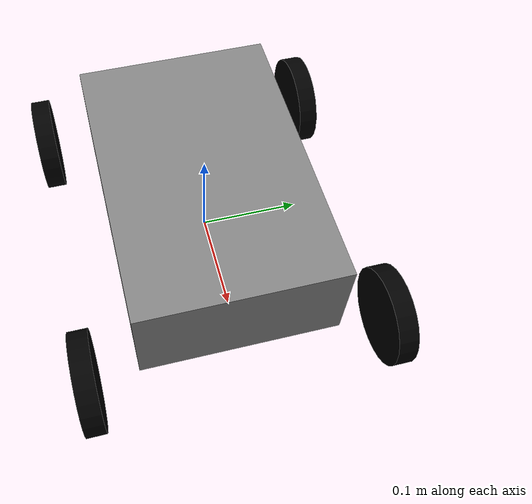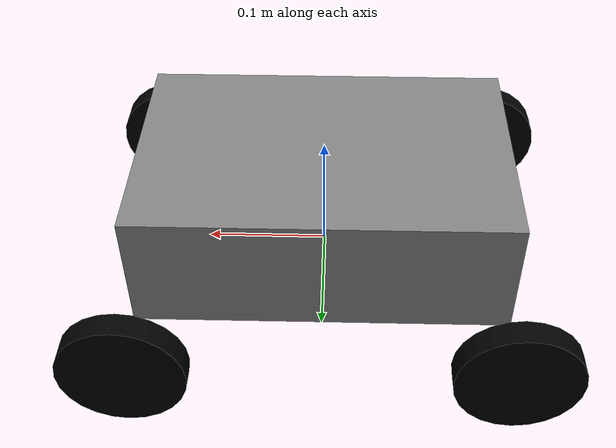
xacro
<?xml version="1.0"?>
<robot name="yahboomcar_X3" xmlns:xacro="http://www.ros.org/wiki/xacro">

  <!-- 기본 파라미터 -->
  <xacro:property name="wheel_separation" value="0.30"/>   <!-- 좌우 바퀴 간 거리 -->
  <xacro:property name="wheel_radius" value="0.05"/>       <!-- 바퀴 반지름 -->
  <xacro:property name="wheel_thickness" value="0.02"/>    <!-- 바퀴 두께 -->
  <xacro:property name="base_size_x" value="0.3"/>         <!-- 베이스 길이 -->
  <xacro:property name="base_size_y" value="0.2"/>         <!-- 베이스 폭 -->
  <xacro:property name="base_size_z" value="0.1"/>         <!-- 베이스 높이 -->

  <!-- 재질 -->
  <material name="Green"><color rgba="0 1 0 1"/></material>
  <material name="Black"><color rgba="0 0 0 1"/></material>
  <material name="Gray"><color rgba="0.5 0.5 0.5 1"/></material>

  <!-- ===== Base link ===== -->
  <link name="base_link">
    <visual>
      <origin xyz="0 0 ${base_size_z/2}" rpy="0 0 0"/>
      <geometry>
        <box size="${base_size_x} ${base_size_y} ${base_size_z}"/>
      </geometry>
      <material name="Gray"/>
    </visual>
    <collision>
      <origin xyz="0 0 ${base_size_z/2}" rpy="0 0 0"/>
      <geometry>
        <box size="${base_size_x} ${base_size_y} ${base_size_z}"/>
      </geometry>
    </collision>
    <inertial>
      <mass value="5.0"/>
      <inertia ixx="0.1" iyy="0.1" izz="0.1" ixy="0.0" ixz="0.0" iyz="0.0"/>
    </inertial>
  </link>

  <!-- ===== Wheels ===== -->
  <xacro:macro name="wheel" params="name x y">
    <link name="${name}">
      <visual>
        <origin xyz="0 0 0" rpy="1.5708 0 0"/>
        <geometry>
          <cylinder radius="${wheel_radius}" length="${wheel_thickness}"/>
        </geometry>
        <material name="Black"/>
      </visual>
      <collision>
        <origin xyz="0 0 0" rpy="1.5708 0 0"/>
        <geometry>
          <cylinder radius="${wheel_radius}" length="${wheel_thickness}"/>
        </geometry>
      </collision>
      <inertial>
        <mass value="0.5"/>
        <inertia ixx="0.01" iyy="0.01" izz="0.01" ixy="0.0" ixz="0.0" iyz="0.0"/>
      </inertial>
    </link>

    <joint name="${name}_joint" type="continuous">
      <parent link="base_link"/>
      <child link="${name}"/>
      <origin xyz="${x} ${y} 0" rpy="0 0 0"/>
      <axis xyz="0 1 0"/>
    </joint>
  </xacro:macro>

  <!-- 바퀴 4개 배치 -->
  <xacro:wheel name="front_left_wheel"  x="${ base_size_x/2 }"  y="${ wheel_separation/2 }"/>
  <xacro:wheel name="front_right_wheel" x="${ base_size_x/2 }"  y="-${ wheel_separation/2 }"/>
  <xacro:wheel name="rear_left_wheel"   x="-${ base_size_x/2 }" y="${ wheel_separation/2 }"/>
  <xacro:wheel name="rear_right_wheel"  x="-${ base_size_x/2 }" y="-${ wheel_separation/2 }"/>

</robot>
